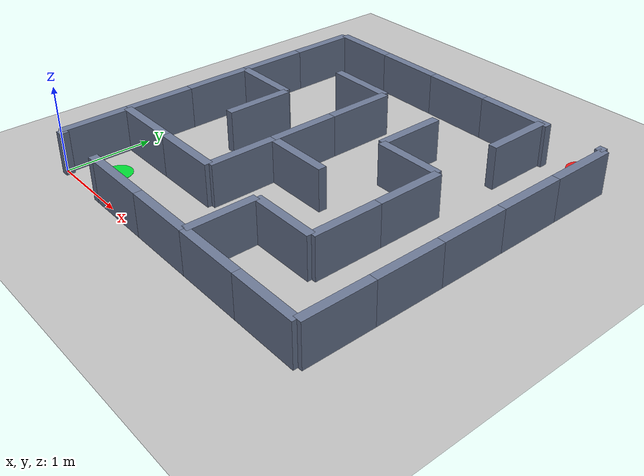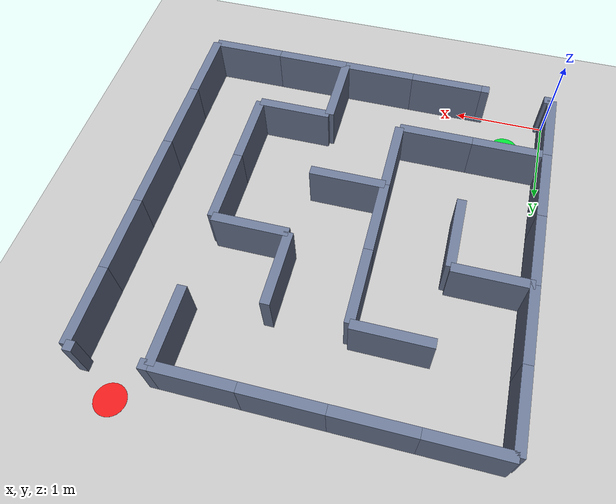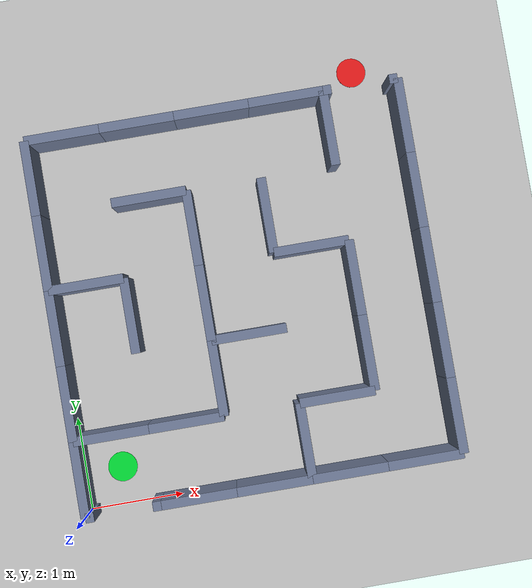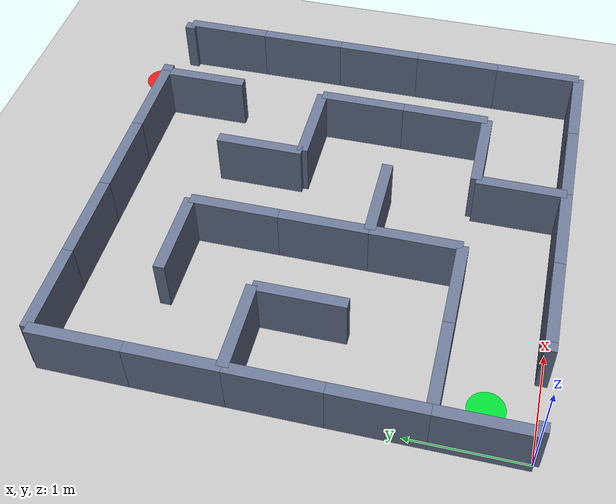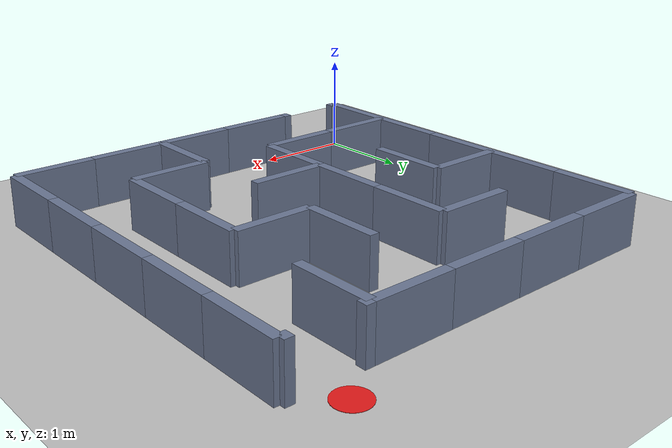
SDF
<?xml version="1.0" ?>
<sdf version="1.6">
  <world name="maze_world">
    <light name="sun" type="directional">
      <cast_shadows>true</cast_shadows>
      <pose>0 0 10 0 0 0</pose>
      <diffuse>0.85 0.85 0.85 1</diffuse>
      <specular>0.2 0.2 0.2 1</specular>
      <attenuation>
        <range>1000</range>
        <constant>0.9</constant>
        <linear>0.01</linear>
        <quadratic>0.001</quadratic>
      </attenuation>
      <direction>-0.4 0.2 -0.9</direction>
    </light>

    <model name="ground_plane">
      <static>true</static>
      <link name="link">
        <collision name="collision">
          <geometry>
            <plane><normal>0 0 1</normal><size>20 20</size></plane>
          </geometry>
          <surface>
            <friction><ode><mu>100</mu><mu2>50</mu2></ode></friction>
          </surface>
        </collision>
        <visual name="visual">
          <cast_shadows>false</cast_shadows>
          <geometry>
            <plane><normal>0 0 1</normal><size>20 20</size></plane>
          </geometry>
          <material>
            <ambient>0.65 0.65 0.65 1</ambient>
            <diffuse>0.75 0.75 0.75 1</diffuse>
            <specular>0.05 0.05 0.05 1</specular>
          </material>
        </visual>
      </link>
    </model>

    <physics type="ode">
      <max_step_size>0.001</max_step_size>
      <real_time_update_rate>1000</real_time_update_rate>
      <real_time_factor>1.0</real_time_factor>
      <ode>
        <solver>
          <type>quick</type>
          <iters>50</iters>
          <sor>1.3</sor>
        </solver>
      </ode>
    </physics>

    <scene>
      <ambient>0.65 0.65 0.65 1</ambient>
      <background>0.90 0.92 0.96 1</background>
      <shadows>true</shadows>
    </scene>

    <gui fullscreen="0">
      <camera name="user_camera">
        <pose>2.00 2.00 6.0 0 1.5707 0</pose>
        <view_controller>orbit</view_controller>
        <projection_type>perspective</projection_type>
      </camera>
    </gui>

    <!-- start pad (south-west corner, visual only) -->
    <model name="start_pad">
      <static>true</static>
      <link name="link">
        <visual name="visual">
          <pose>0 0 0.002 0 0 0</pose>
          <geometry><cylinder><radius>0.16</radius><length>0.004</length></cylinder></geometry>
          <material><ambient>0.0 0.85 0.2 1</ambient><diffuse>0.0 0.85 0.2 1</diffuse></material>
        </visual>
      </link>
      <pose>0.400 0.400 0 0 0 0</pose>
    </model>

    <!-- exit pad (north-east corner, visual only) -->
    <model name="exit_pad">
      <static>true</static>
      <link name="link">
        <visual name="visual">
          <pose>0 0 0.002 0 0 0</pose>
          <geometry><cylinder><radius>0.16</radius><length>0.004</length></cylinder></geometry>
          <material><ambient>0.9 0.1 0.1 1</ambient><diffuse>0.9 0.1 0.1 1</diffuse></material>
        </visual>
      </link>
      <pose>3.600 4.250 0 0 0 0</pose>
    </model>

    <model name="maze_wall_000_entrance_w">
      <static>true</static>
      <link name="link">
        <collision name="collision">
          <geometry><box><size>0.090 0.100 0.5</size></box></geometry>
          <surface>
            <friction><ode><mu>1.0</mu><mu2>1.0</mu2></ode></friction>
          </surface>
        </collision>
        <visual name="visual">
          <geometry><box><size>0.090 0.100 0.5</size></box></geometry>
          <material>
            <ambient>0.32 0.36 0.46 1</ambient>
            <diffuse>0.42 0.47 0.58 1</diffuse>
            <specular>0.1 0.1 0.1 1</specular>
          </material>
        </visual>
      </link>
      <pose>0.045 0.000 0.250 0 0 0</pose>
    </model>

    <model name="maze_wall_001_entrance_e">
      <static>true</static>
      <link name="link">
        <collision name="collision">
          <geometry><box><size>0.090 0.100 0.5</size></box></geometry>
          <surface>
            <friction><ode><mu>1.0</mu><mu2>1.0</mu2></ode></friction>
          </surface>
        </collision>
        <visual name="visual">
          <geometry><box><size>0.090 0.100 0.5</size></box></geometry>
          <material>
            <ambient>0.32 0.36 0.46 1</ambient>
            <diffuse>0.42 0.47 0.58 1</diffuse>
            <specular>0.1 0.1 0.1 1</specular>
          </material>
        </visual>
      </link>
      <pose>0.755 0.000 0.250 0 0 0</pose>
    </model>

    <model name="maze_wall_002">
      <static>true</static>
      <link name="link">
        <collision name="collision">
          <geometry><box><size>0.100 0.800 0.5</size></box></geometry>
          <surface>
            <friction><ode><mu>1.0</mu><mu2>1.0</mu2></ode></friction>
          </surface>
        </collision>
        <visual name="visual">
          <geometry><box><size>0.100 0.800 0.5</size></box></geometry>
          <material>
            <ambient>0.32 0.36 0.46 1</ambient>
            <diffuse>0.42 0.47 0.58 1</diffuse>
            <specular>0.1 0.1 0.1 1</specular>
          </material>
        </visual>
      </link>
      <pose>0.000 0.400 0.250 0 0 0</pose>
    </model>

    <model name="maze_wall_003">
      <static>true</static>
      <link name="link">
        <collision name="collision">
          <geometry><box><size>0.800 0.100 0.5</size></box></geometry>
          <surface>
            <friction><ode><mu>1.0</mu><mu2>1.0</mu2></ode></friction>
          </surface>
        </collision>
        <visual name="visual">
          <geometry><box><size>0.800 0.100 0.5</size></box></geometry>
          <material>
            <ambient>0.32 0.36 0.46 1</ambient>
            <diffuse>0.42 0.47 0.58 1</diffuse>
            <specular>0.1 0.1 0.1 1</specular>
          </material>
        </visual>
      </link>
      <pose>0.400 0.800 0.250 0 0 0</pose>
    </model>

    <model name="maze_wall_004">
      <static>true</static>
      <link name="link">
        <collision name="collision">
          <geometry><box><size>0.100 0.800 0.5</size></box></geometry>
          <surface>
            <friction><ode><mu>1.0</mu><mu2>1.0</mu2></ode></friction>
          </surface>
        </collision>
        <visual name="visual">
          <geometry><box><size>0.100 0.800 0.5</size></box></geometry>
          <material>
            <ambient>0.32 0.36 0.46 1</ambient>
            <diffuse>0.42 0.47 0.58 1</diffuse>
            <specular>0.1 0.1 0.1 1</specular>
          </material>
        </visual>
      </link>
      <pose>0.000 1.200 0.250 0 0 0</pose>
    </model>

    <model name="maze_wall_005">
      <static>true</static>
      <link name="link">
        <collision name="collision">
          <geometry><box><size>0.100 0.800 0.5</size></box></geometry>
          <surface>
            <friction><ode><mu>1.0</mu><mu2>1.0</mu2></ode></friction>
          </surface>
        </collision>
        <visual name="visual">
          <geometry><box><size>0.100 0.800 0.5</size></box></geometry>
          <material>
            <ambient>0.32 0.36 0.46 1</ambient>
            <diffuse>0.42 0.47 0.58 1</diffuse>
            <specular>0.1 0.1 0.1 1</specular>
          </material>
        </visual>
      </link>
      <pose>0.000 2.000 0.250 0 0 0</pose>
    </model>

    <model name="maze_wall_006">
      <static>true</static>
      <link name="link">
        <collision name="collision">
          <geometry><box><size>0.800 0.100 0.5</size></box></geometry>
          <surface>
            <friction><ode><mu>1.0</mu><mu2>1.0</mu2></ode></friction>
          </surface>
        </collision>
        <visual name="visual">
          <geometry><box><size>0.800 0.100 0.5</size></box></geometry>
          <material>
            <ambient>0.32 0.36 0.46 1</ambient>
            <diffuse>0.42 0.47 0.58 1</diffuse>
            <specular>0.1 0.1 0.1 1</specular>
          </material>
        </visual>
      </link>
      <pose>0.400 2.400 0.250 0 0 0</pose>
    </model>

    <model name="maze_wall_007">
      <static>true</static>
      <link name="link">
        <collision name="collision">
          <geometry><box><size>0.100 0.800 0.5</size></box></geometry>
          <surface>
            <friction><ode><mu>1.0</mu><mu2>1.0</mu2></ode></friction>
          </surface>
        </collision>
        <visual name="visual">
          <geometry><box><size>0.100 0.800 0.5</size></box></geometry>
          <material>
            <ambient>0.32 0.36 0.46 1</ambient>
            <diffuse>0.42 0.47 0.58 1</diffuse>
            <specular>0.1 0.1 0.1 1</specular>
          </material>
        </visual>
      </link>
      <pose>0.000 2.800 0.250 0 0 0</pose>
    </model>

    <model name="maze_wall_008">
      <static>true</static>
      <link name="link">
        <collision name="collision">
          <geometry><box><size>0.100 0.800 0.5</size></box></geometry>
          <surface>
            <friction><ode><mu>1.0</mu><mu2>1.0</mu2></ode></friction>
          </surface>
        </collision>
        <visual name="visual">
          <geometry><box><size>0.100 0.800 0.5</size></box></geometry>
          <material>
            <ambient>0.32 0.36 0.46 1</ambient>
            <diffuse>0.42 0.47 0.58 1</diffuse>
            <specular>0.1 0.1 0.1 1</specular>
          </material>
        </visual>
      </link>
      <pose>0.000 3.600 0.250 0 0 0</pose>
    </model>

    <model name="maze_wall_009">
      <static>true</static>
      <link name="link">
        <collision name="collision">
          <geometry><box><size>0.800 0.100 0.5</size></box></geometry>
          <surface>
            <friction><ode><mu>1.0</mu><mu2>1.0</mu2></ode></friction>
          </surface>
        </collision>
        <visual name="visual">
          <geometry><box><size>0.800 0.100 0.5</size></box></geometry>
          <material>
            <ambient>0.32 0.36 0.46 1</ambient>
            <diffuse>0.42 0.47 0.58 1</diffuse>
            <specular>0.1 0.1 0.1 1</specular>
          </material>
        </visual>
      </link>
      <pose>1.200 0.000 0.250 0 0 0</pose>
    </model>

    <model name="maze_wall_010">
      <static>true</static>
      <link name="link">
        <collision name="collision">
          <geometry><box><size>0.800 0.100 0.5</size></box></geometry>
          <surface>
            <friction><ode><mu>1.0</mu><mu2>1.0</mu2></ode></friction>
          </surface>
        </collision>
        <visual name="visual">
          <geometry><box><size>0.800 0.100 0.5</size></box></geometry>
          <material>
            <ambient>0.32 0.36 0.46 1</ambient>
            <diffuse>0.42 0.47 0.58 1</diffuse>
            <specular>0.1 0.1 0.1 1</specular>
          </material>
        </visual>
      </link>
      <pose>1.200 0.800 0.250 0 0 0</pose>
    </model>

    <model name="maze_wall_011">
      <static>true</static>
      <link name="link">
        <collision name="collision">
          <geometry><box><size>0.100 0.800 0.5</size></box></geometry>
          <surface>
            <friction><ode><mu>1.0</mu><mu2>1.0</mu2></ode></friction>
          </surface>
        </collision>
        <visual name="visual">
          <geometry><box><size>0.100 0.800 0.5</size></box></geometry>
          <material>
            <ambient>0.32 0.36 0.46 1</ambient>
            <diffuse>0.42 0.47 0.58 1</diffuse>
            <specular>0.1 0.1 0.1 1</specular>
          </material>
        </visual>
      </link>
      <pose>0.800 2.000 0.250 0 0 0</pose>
    </model>

    <model name="maze_wall_012">
      <static>true</static>
      <link name="link">
        <collision name="collision">
          <geometry><box><size>0.800 0.100 0.5</size></box></geometry>
          <surface>
            <friction><ode><mu>1.0</mu><mu2>1.0</mu2></ode></friction>
          </surface>
        </collision>
        <visual name="visual">
          <geometry><box><size>0.800 0.100 0.5</size></box></geometry>
          <material>
            <ambient>0.32 0.36 0.46 1</ambient>
            <diffuse>0.42 0.47 0.58 1</diffuse>
            <specular>0.1 0.1 0.1 1</specular>
          </material>
        </visual>
      </link>
      <pose>1.200 3.200 0.250 0 0 0</pose>
    </model>

    <model name="maze_wall_013">
      <static>true</static>
      <link name="link">
        <collision name="collision">
          <geometry><box><size>0.800 0.100 0.5</size></box></geometry>
          <surface>
            <friction><ode><mu>1.0</mu><mu2>1.0</mu2></ode></friction>
          </surface>
        </collision>
        <visual name="visual">
          <geometry><box><size>0.800 0.100 0.5</size></box></geometry>
          <material>
            <ambient>0.32 0.36 0.46 1</ambient>
            <diffuse>0.42 0.47 0.58 1</diffuse>
            <specular>0.1 0.1 0.1 1</specular>
          </material>
        </visual>
      </link>
      <pose>2.000 0.000 0.250 0 0 0</pose>
    </model>

    <model name="maze_wall_014">
      <static>true</static>
      <link name="link">
        <collision name="collision">
          <geometry><box><size>0.100 0.800 0.5</size></box></geometry>
          <surface>
            <friction><ode><mu>1.0</mu><mu2>1.0</mu2></ode></friction>
          </surface>
        </collision>
        <visual name="visual">
          <geometry><box><size>0.100 0.800 0.5</size></box></geometry>
          <material>
            <ambient>0.32 0.36 0.46 1</ambient>
            <diffuse>0.42 0.47 0.58 1</diffuse>
            <specular>0.1 0.1 0.1 1</specular>
          </material>
        </visual>
      </link>
      <pose>1.600 1.200 0.250 0 0 0</pose>
    </model>

    <model name="maze_wall_015">
      <static>true</static>
      <link name="link">
        <collision name="collision">
          <geometry><box><size>0.800 0.100 0.5</size></box></geometry>
          <surface>
            <friction><ode><mu>1.0</mu><mu2>1.0</mu2></ode></friction>
          </surface>
        </collision>
        <visual name="visual">
          <geometry><box><size>0.800 0.100 0.5</size></box></geometry>
          <material>
            <ambient>0.32 0.36 0.46 1</ambient>
            <diffuse>0.42 0.47 0.58 1</diffuse>
            <specular>0.1 0.1 0.1 1</specular>
          </material>
        </visual>
      </link>
      <pose>2.000 1.600 0.250 0 0 0</pose>
    </model>

    <model name="maze_wall_016">
      <static>true</static>
      <link name="link">
        <collision name="collision">
          <geometry><box><size>0.100 0.800 0.5</size></box></geometry>
          <surface>
            <friction><ode><mu>1.0</mu><mu2>1.0</mu2></ode></friction>
          </surface>
        </collision>
        <visual name="visual">
          <geometry><box><size>0.100 0.800 0.5</size></box></geometry>
          <material>
            <ambient>0.32 0.36 0.46 1</ambient>
            <diffuse>0.42 0.47 0.58 1</diffuse>
            <specular>0.1 0.1 0.1 1</specular>
          </material>
        </visual>
      </link>
      <pose>1.600 2.000 0.250 0 0 0</pose>
    </model>

    <model name="maze_wall_017">
      <static>true</static>
      <link name="link">
        <collision name="collision">
          <geometry><box><size>0.100 0.800 0.5</size></box></geometry>
          <surface>
            <friction><ode><mu>1.0</mu><mu2>1.0</mu2></ode></friction>
          </surface>
        </collision>
        <visual name="visual">
          <geometry><box><size>0.100 0.800 0.5</size></box></geometry>
          <material>
            <ambient>0.32 0.36 0.46 1</ambient>
            <diffuse>0.42 0.47 0.58 1</diffuse>
            <specular>0.1 0.1 0.1 1</specular>
          </material>
        </visual>
      </link>
      <pose>1.600 2.800 0.250 0 0 0</pose>
    </model>

    <model name="maze_wall_018">
      <static>true</static>
      <link name="link">
        <collision name="collision">
          <geometry><box><size>0.800 0.100 0.5</size></box></geometry>
          <surface>
            <friction><ode><mu>1.0</mu><mu2>1.0</mu2></ode></friction>
          </surface>
        </collision>
        <visual name="visual">
          <geometry><box><size>0.800 0.100 0.5</size></box></geometry>
          <material>
            <ambient>0.32 0.36 0.46 1</ambient>
            <diffuse>0.42 0.47 0.58 1</diffuse>
            <specular>0.1 0.1 0.1 1</specular>
          </material>
        </visual>
      </link>
      <pose>2.800 0.000 0.250 0 0 0</pose>
    </model>

    <model name="maze_wall_019">
      <static>true</static>
      <link name="link">
        <collision name="collision">
          <geometry><box><size>0.100 0.800 0.5</size></box></geometry>
          <surface>
            <friction><ode><mu>1.0</mu><mu2>1.0</mu2></ode></friction>
          </surface>
        </collision>
        <visual name="visual">
          <geometry><box><size>0.100 0.800 0.5</size></box></geometry>
          <material>
            <ambient>0.32 0.36 0.46 1</ambient>
            <diffuse>0.42 0.47 0.58 1</diffuse>
            <specular>0.1 0.1 0.1 1</specular>
          </material>
        </visual>
      </link>
      <pose>2.400 0.400 0.250 0 0 0</pose>
    </model>

    <model name="maze_wall_020">
      <static>true</static>
      <link name="link">
        <collision name="collision">
          <geometry><box><size>0.800 0.100 0.5</size></box></geometry>
          <surface>
            <friction><ode><mu>1.0</mu><mu2>1.0</mu2></ode></friction>
          </surface>
        </collision>
        <visual name="visual">
          <geometry><box><size>0.800 0.100 0.5</size></box></geometry>
          <material>
            <ambient>0.32 0.36 0.46 1</ambient>
            <diffuse>0.42 0.47 0.58 1</diffuse>
            <specular>0.1 0.1 0.1 1</specular>
          </material>
        </visual>
      </link>
      <pose>2.800 0.800 0.250 0 0 0</pose>
    </model>

    <model name="maze_wall_021">
      <static>true</static>
      <link name="link">
        <collision name="collision">
          <geometry><box><size>0.800 0.100 0.5</size></box></geometry>
          <surface>
            <friction><ode><mu>1.0</mu><mu2>1.0</mu2></ode></friction>
          </surface>
        </collision>
        <visual name="visual">
          <geometry><box><size>0.800 0.100 0.5</size></box></geometry>
          <material>
            <ambient>0.32 0.36 0.46 1</ambient>
            <diffuse>0.42 0.47 0.58 1</diffuse>
            <specular>0.1 0.1 0.1 1</specular>
          </material>
        </visual>
      </link>
      <pose>2.800 2.400 0.250 0 0 0</pose>
    </model>

    <model name="maze_wall_022">
      <static>true</static>
      <link name="link">
        <collision name="collision">
          <geometry><box><size>0.100 0.800 0.5</size></box></geometry>
          <surface>
            <friction><ode><mu>1.0</mu><mu2>1.0</mu2></ode></friction>
          </surface>
        </collision>
        <visual name="visual">
          <geometry><box><size>0.100 0.800 0.5</size></box></geometry>
          <material>
            <ambient>0.32 0.36 0.46 1</ambient>
            <diffuse>0.42 0.47 0.58 1</diffuse>
            <specular>0.1 0.1 0.1 1</specular>
          </material>
        </visual>
      </link>
      <pose>2.400 2.800 0.250 0 0 0</pose>
    </model>

    <model name="maze_wall_023">
      <static>true</static>
      <link name="link">
        <collision name="collision">
          <geometry><box><size>0.800 0.100 0.5</size></box></geometry>
          <surface>
            <friction><ode><mu>1.0</mu><mu2>1.0</mu2></ode></friction>
          </surface>
        </collision>
        <visual name="visual">
          <geometry><box><size>0.800 0.100 0.5</size></box></geometry>
          <material>
            <ambient>0.32 0.36 0.46 1</ambient>
            <diffuse>0.42 0.47 0.58 1</diffuse>
            <specular>0.1 0.1 0.1 1</specular>
          </material>
        </visual>
      </link>
      <pose>3.600 0.000 0.250 0 0 0</pose>
    </model>

    <model name="maze_wall_024">
      <static>true</static>
      <link name="link">
        <collision name="collision">
          <geometry><box><size>0.100 0.800 0.5</size></box></geometry>
          <surface>
            <friction><ode><mu>1.0</mu><mu2>1.0</mu2></ode></friction>
          </surface>
        </collision>
        <visual name="visual">
          <geometry><box><size>0.100 0.800 0.5</size></box></geometry>
          <material>
            <ambient>0.32 0.36 0.46 1</ambient>
            <diffuse>0.42 0.47 0.58 1</diffuse>
            <specular>0.1 0.1 0.1 1</specular>
          </material>
        </visual>
      </link>
      <pose>3.200 1.200 0.250 0 0 0</pose>
    </model>

    <model name="maze_wall_025">
      <static>true</static>
      <link name="link">
        <collision name="collision">
          <geometry><box><size>0.100 0.800 0.5</size></box></geometry>
          <surface>
            <friction><ode><mu>1.0</mu><mu2>1.0</mu2></ode></friction>
          </surface>
        </collision>
        <visual name="visual">
          <geometry><box><size>0.100 0.800 0.5</size></box></geometry>
          <material>
            <ambient>0.32 0.36 0.46 1</ambient>
            <diffuse>0.42 0.47 0.58 1</diffuse>
            <specular>0.1 0.1 0.1 1</specular>
          </material>
        </visual>
      </link>
      <pose>3.200 2.000 0.250 0 0 0</pose>
    </model>

    <model name="maze_wall_026">
      <static>true</static>
      <link name="link">
        <collision name="collision">
          <geometry><box><size>0.100 0.800 0.5</size></box></geometry>
          <surface>
            <friction><ode><mu>1.0</mu><mu2>1.0</mu2></ode></friction>
          </surface>
        </collision>
        <visual name="visual">
          <geometry><box><size>0.100 0.800 0.5</size></box></geometry>
          <material>
            <ambient>0.32 0.36 0.46 1</ambient>
            <diffuse>0.42 0.47 0.58 1</diffuse>
            <specular>0.1 0.1 0.1 1</specular>
          </material>
        </visual>
      </link>
      <pose>3.200 3.600 0.250 0 0 0</pose>
    </model>

    <model name="maze_wall_027">
      <static>true</static>
      <link name="link">
        <collision name="collision">
          <geometry><box><size>0.800 0.100 0.5</size></box></geometry>
          <surface>
            <friction><ode><mu>1.0</mu><mu2>1.0</mu2></ode></friction>
          </surface>
        </collision>
        <visual name="visual">
          <geometry><box><size>0.800 0.100 0.5</size></box></geometry>
          <material>
            <ambient>0.32 0.36 0.46 1</ambient>
            <diffuse>0.42 0.47 0.58 1</diffuse>
            <specular>0.1 0.1 0.1 1</specular>
          </material>
        </visual>
      </link>
      <pose>0.400 4.000 0.250 0 0 0</pose>
    </model>

    <model name="maze_wall_028">
      <static>true</static>
      <link name="link">
        <collision name="collision">
          <geometry><box><size>0.800 0.100 0.5</size></box></geometry>
          <surface>
            <friction><ode><mu>1.0</mu><mu2>1.0</mu2></ode></friction>
          </surface>
        </collision>
        <visual name="visual">
          <geometry><box><size>0.800 0.100 0.5</size></box></geometry>
          <material>
            <ambient>0.32 0.36 0.46 1</ambient>
            <diffuse>0.42 0.47 0.58 1</diffuse>
            <specular>0.1 0.1 0.1 1</specular>
          </material>
        </visual>
      </link>
      <pose>1.200 4.000 0.250 0 0 0</pose>
    </model>

    <model name="maze_wall_029">
      <static>true</static>
      <link name="link">
        <collision name="collision">
          <geometry><box><size>0.800 0.100 0.5</size></box></geometry>
          <surface>
            <friction><ode><mu>1.0</mu><mu2>1.0</mu2></ode></friction>
          </surface>
        </collision>
        <visual name="visual">
          <geometry><box><size>0.800 0.100 0.5</size></box></geometry>
          <material>
            <ambient>0.32 0.36 0.46 1</ambient>
            <diffuse>0.42 0.47 0.58 1</diffuse>
            <specular>0.1 0.1 0.1 1</specular>
          </material>
        </visual>
      </link>
      <pose>2.000 4.000 0.250 0 0 0</pose>
    </model>

    <model name="maze_wall_030">
      <static>true</static>
      <link name="link">
        <collision name="collision">
          <geometry><box><size>0.800 0.100 0.5</size></box></geometry>
          <surface>
            <friction><ode><mu>1.0</mu><mu2>1.0</mu2></ode></friction>
          </surface>
        </collision>
        <visual name="visual">
          <geometry><box><size>0.800 0.100 0.5</size></box></geometry>
          <material>
            <ambient>0.32 0.36 0.46 1</ambient>
            <diffuse>0.42 0.47 0.58 1</diffuse>
            <specular>0.1 0.1 0.1 1</specular>
          </material>
        </visual>
      </link>
      <pose>2.800 4.000 0.250 0 0 0</pose>
    </model>

    <model name="maze_wall_031_exit_w">
      <static>true</static>
      <link name="link">
        <collision name="collision">
          <geometry><box><size>0.090 0.100 0.5</size></box></geometry>
          <surface>
            <friction><ode><mu>1.0</mu><mu2>1.0</mu2></ode></friction>
          </surface>
        </collision>
        <visual name="visual">
          <geometry><box><size>0.090 0.100 0.5</size></box></geometry>
          <material>
            <ambient>0.32 0.36 0.46 1</ambient>
            <diffuse>0.42 0.47 0.58 1</diffuse>
            <specular>0.1 0.1 0.1 1</specular>
          </material>
        </visual>
      </link>
      <pose>3.245 4.000 0.250 0 0 0</pose>
    </model>

    <model name="maze_wall_032_exit_e">
      <static>true</static>
      <link name="link">
        <collision name="collision">
          <geometry><box><size>0.090 0.100 0.5</size></box></geometry>
          <surface>
            <friction><ode><mu>1.0</mu><mu2>1.0</mu2></ode></friction>
          </surface>
        </collision>
        <visual name="visual">
          <geometry><box><size>0.090 0.100 0.5</size></box></geometry>
          <material>
            <ambient>0.32 0.36 0.46 1</ambient>
            <diffuse>0.42 0.47 0.58 1</diffuse>
            <specular>0.1 0.1 0.1 1</specular>
          </material>
        </visual>
      </link>
      <pose>3.955 4.000 0.250 0 0 0</pose>
    </model>

    <model name="maze_wall_033">
      <static>true</static>
      <link name="link">
        <collision name="collision">
          <geometry><box><size>0.100 0.800 0.5</size></box></geometry>
          <surface>
            <friction><ode><mu>1.0</mu><mu2>1.0</mu2></ode></friction>
          </surface>
        </collision>
        <visual name="visual">
          <geometry><box><size>0.100 0.800 0.5</size></box></geometry>
          <material>
            <ambient>0.32 0.36 0.46 1</ambient>
            <diffuse>0.42 0.47 0.58 1</diffuse>
            <specular>0.1 0.1 0.1 1</specular>
          </material>
        </visual>
      </link>
      <pose>4.000 0.400 0.250 0 0 0</pose>
    </model>

    <model name="maze_wall_034">
      <static>true</static>
      <link name="link">
        <collision name="collision">
          <geometry><box><size>0.100 0.800 0.5</size></box></geometry>
          <surface>
            <friction><ode><mu>1.0</mu><mu2>1.0</mu2></ode></friction>
          </surface>
        </collision>
        <visual name="visual">
          <geometry><box><size>0.100 0.800 0.5</size></box></geometry>
          <material>
            <ambient>0.32 0.36 0.46 1</ambient>
            <diffuse>0.42 0.47 0.58 1</diffuse>
            <specular>0.1 0.1 0.1 1</specular>
          </material>
        </visual>
      </link>
      <pose>4.000 1.200 0.250 0 0 0</pose>
    </model>

    <model name="maze_wall_035">
      <static>true</static>
      <link name="link">
        <collision name="collision">
          <geometry><box><size>0.100 0.800 0.5</size></box></geometry>
          <surface>
            <friction><ode><mu>1.0</mu><mu2>1.0</mu2></ode></friction>
          </surface>
        </collision>
        <visual name="visual">
          <geometry><box><size>0.100 0.800 0.5</size></box></geometry>
          <material>
            <ambient>0.32 0.36 0.46 1</ambient>
            <diffuse>0.42 0.47 0.58 1</diffuse>
            <specular>0.1 0.1 0.1 1</specular>
          </material>
        </visual>
      </link>
      <pose>4.000 2.000 0.250 0 0 0</pose>
    </model>

    <model name="maze_wall_036">
      <static>true</static>
      <link name="link">
        <collision name="collision">
          <geometry><box><size>0.100 0.800 0.5</size></box></geometry>
          <surface>
            <friction><ode><mu>1.0</mu><mu2>1.0</mu2></ode></friction>
          </surface>
        </collision>
        <visual name="visual">
          <geometry><box><size>0.100 0.800 0.5</size></box></geometry>
          <material>
            <ambient>0.32 0.36 0.46 1</ambient>
            <diffuse>0.42 0.47 0.58 1</diffuse>
            <specular>0.1 0.1 0.1 1</specular>
          </material>
        </visual>
      </link>
      <pose>4.000 2.800 0.250 0 0 0</pose>
    </model>

    <model name="maze_wall_037">
      <static>true</static>
      <link name="link">
        <collision name="collision">
          <geometry><box><size>0.100 0.800 0.5</size></box></geometry>
          <surface>
            <friction><ode><mu>1.0</mu><mu2>1.0</mu2></ode></friction>
          </surface>
        </collision>
        <visual name="visual">
          <geometry><box><size>0.100 0.800 0.5</size></box></geometry>
          <material>
            <ambient>0.32 0.36 0.46 1</ambient>
            <diffuse>0.42 0.47 0.58 1</diffuse>
            <specular>0.1 0.1 0.1 1</specular>
          </material>
        </visual>
      </link>
      <pose>4.000 3.600 0.250 0 0 0</pose>
    </model>
  </world>
</sdf>
